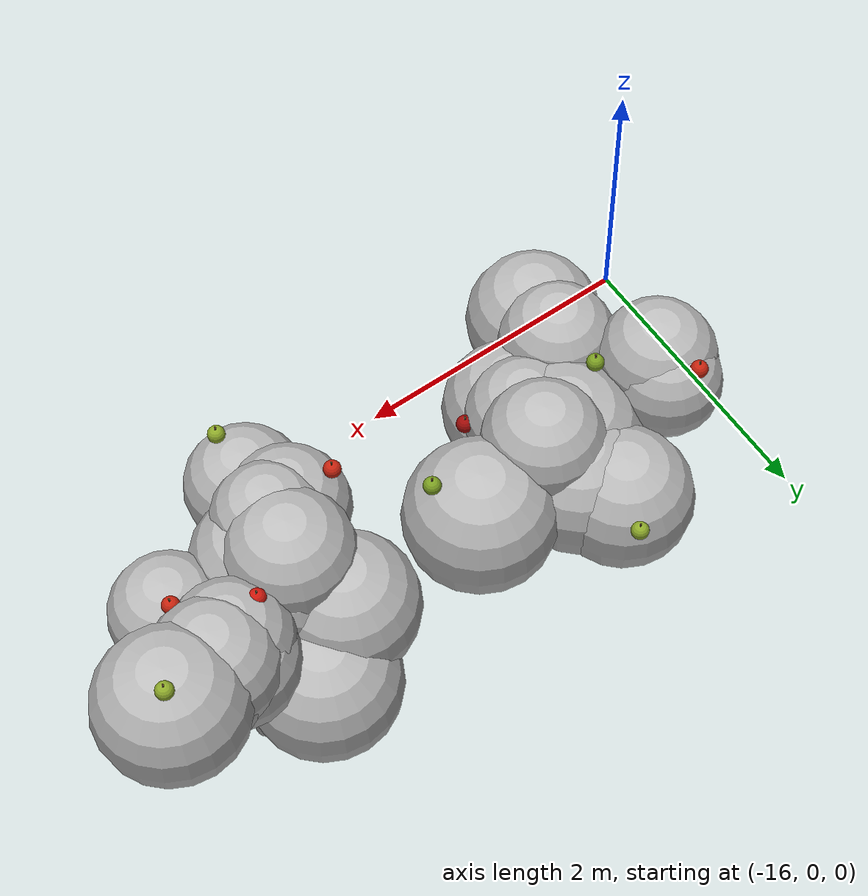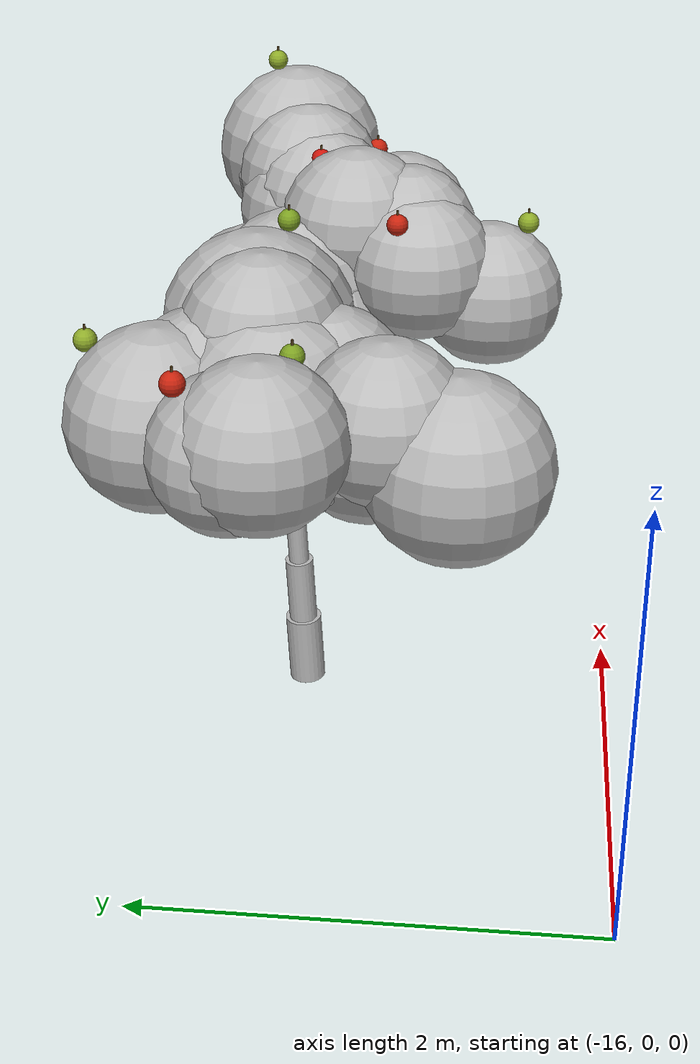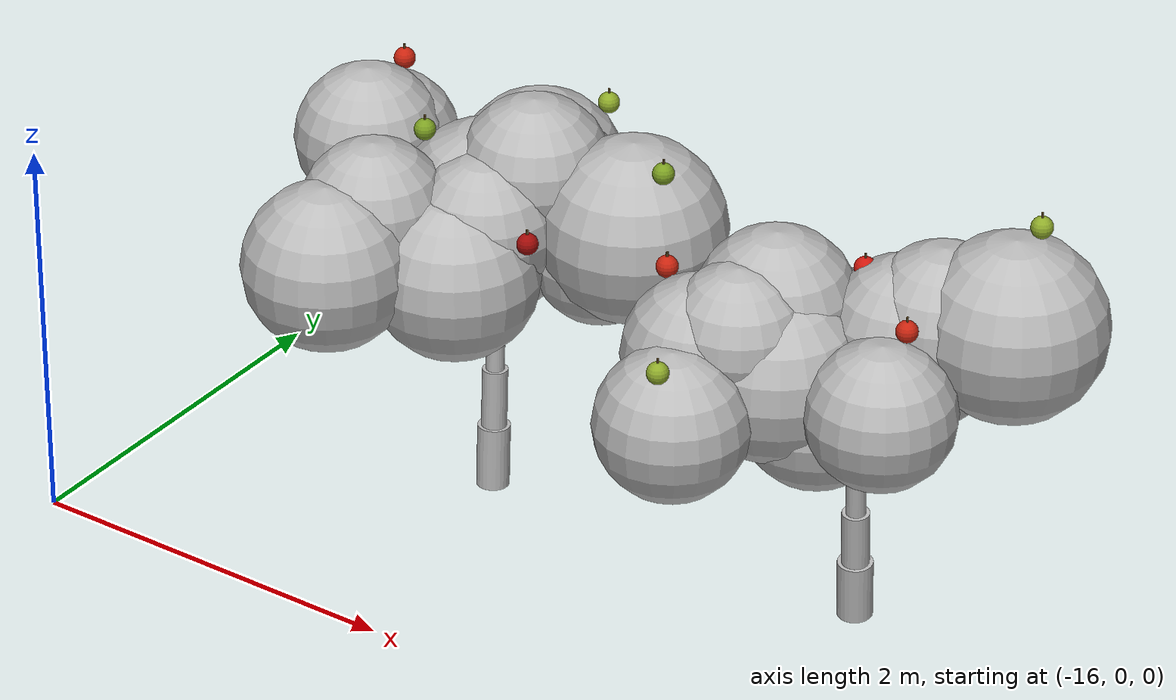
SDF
<sdf version="1.6">
 <world name="default">
  <model name="tree_r3_t1">
   <static>true</static>
   <link name="tree_r3_t1_trunk0">
    <pose>-14.3182 1.4362 0.1592 -0.0537 -0.0063 0</pose>
    <collision name="tree_r3_t1_trunk0_c">
     <geometry><cylinder><radius>0.0838</radius><length>0.3375</length></cylinder></geometry>
    </collision>
    <visual name="tree_r3_t1_trunk0_v">
     <geometry><cylinder><radius>0.0838</radius><length>0.3375</length></cylinder></geometry>
     <material>
      <script>
       <uri>model://orchard/materials/scripts</uri>
       <uri>model://orchard/materials/textures</uri>
       <name>Orchard/Bark</name>
      </script>
     </material>
    </visual>
   </link>
   <link name="tree_r3_t1_trunk1">
    <pose>-14.3202 1.4533 0.4776 -0.0537 -0.0063 0</pose>
    <visual name="tree_r3_t1_trunk1_v">
     <geometry><cylinder><radius>0.0653</radius><length>0.3375</length></cylinder></geometry>
     <material>
      <script>
       <uri>model://orchard/materials/scripts</uri>
       <uri>model://orchard/materials/textures</uri>
       <name>Orchard/Bark</name>
      </script>
     </material>
    </visual>
   </link>
   <link name="tree_r3_t1_trunk2">
    <pose>-14.3222 1.4705 0.7961 -0.0537 -0.0063 0</pose>
    <visual name="tree_r3_t1_trunk2_v">
     <geometry><cylinder><radius>0.0469</radius><length>0.3375</length></cylinder></geometry>
     <material>
      <script>
       <uri>model://orchard/materials/scripts</uri>
       <uri>model://orchard/materials/textures</uri>
       <name>Orchard/Bark</name>
      </script>
     </material>
    </visual>
   </link>
   <link name="tree_r3_t1_br0">
    <pose>-14.0848 1.4720 1.1787 0.0000 0.8179 -0.0293</pose>
    <visual name="tree_r3_t1_br0_v">
     <geometry><cylinder><radius>0.0301</radius><length>0.6536</length></cylinder></geometry>
     <material>
      <script>
       <uri>model://orchard/materials/scripts</uri>
       <uri>model://orchard/materials/textures</uri>
       <name>Orchard/Bark</name>
      </script>
     </material>
    </visual>
   </link>
   <link name="tree_r3_t1_br1">
    <pose>-14.0418 1.7159 1.1548 0.0000 1.0739 0.6997</pose>
    <visual name="tree_r3_t1_br1_v">
     <geometry><cylinder><radius>0.0251</radius><length>0.8369</length></cylinder></geometry>
     <material>
      <script>
       <uri>model://orchard/materials/scripts</uri>
       <uri>model://orchard/materials/textures</uri>
       <name>Orchard/Bark</name>
      </script>
     </material>
    </visual>
   </link>
   <link name="tree_r3_t1_br2">
    <pose>-14.4053 1.6651 1.2347 0.0000 0.6293 1.9862</pose>
    <visual name="tree_r3_t1_br2_v">
     <geometry><cylinder><radius>0.0326</radius><length>0.6912</length></cylinder></geometry>
     <material>
      <script>
       <uri>model://orchard/materials/scripts</uri>
       <uri>model://orchard/materials/textures</uri>
       <name>Orchard/Bark</name>
      </script>
     </material>
    </visual>
   </link>
   <link name="tree_r3_t1_br3">
    <pose>-14.6469 1.5572 1.1988 0.0000 0.9393 2.9046</pose>
    <visual name="tree_r3_t1_br3_v">
     <geometry><cylinder><radius>0.0303</radius><length>0.8252</length></cylinder></geometry>
     <material>
      <script>
       <uri>model://orchard/materials/scripts</uri>
       <uri>model://orchard/materials/textures</uri>
       <name>Orchard/Bark</name>
      </script>
     </material>
    </visual>
   </link>
   <link name="tree_r3_t1_br4">
    <pose>-14.4832 1.1707 1.1184 0.0000 1.1318 4.2339</pose>
    <visual name="tree_r3_t1_br4_v">
     <geometry><cylinder><radius>0.0309</radius><length>0.7675</length></cylinder></geometry>
     <material>
      <script>
       <uri>model://orchard/materials/scripts</uri>
       <uri>model://orchard/materials/textures</uri>
       <name>Orchard/Bark</name>
      </script>
     </material>
    </visual>
   </link>
   <link name="tree_r3_t1_br5">
    <pose>-14.2226 1.1364 1.1197 0.0000 1.1392 4.9981</pose>
    <visual name="tree_r3_t1_br5_v">
     <geometry><cylinder><radius>0.0341</radius><length>0.7862</length></cylinder></geometry>
     <material>
      <script>
       <uri>model://orchard/materials/scripts</uri>
       <uri>model://orchard/materials/textures</uri>
       <name>Orchard/Bark</name>
      </script>
     </material>
    </visual>
   </link>
   <link name="tree_r3_t1_fol0">
    <pose>-14.4100 1.5493 1.4643 0 0 0</pose>
    <visual name="tree_r3_t1_fol0_v">
     <geometry><sphere><radius>0.4921</radius></sphere></geometry>
     <material>
      <script>
       <uri>model://orchard/materials/scripts</uri>
       <uri>model://orchard/materials/textures</uri>
       <name>Orchard/Foliage1</name>
      </script>
     </material>
    </visual>
   </link>
   <link name="tree_r3_t1_fol1">
    <pose>-15.0916 1.6495 1.6360 0 0 0</pose>
    <visual name="tree_r3_t1_fol1_v">
     <geometry><sphere><radius>0.3508</radius></sphere></geometry>
     <material>
      <script>
       <uri>model://orchard/materials/scripts</uri>
       <uri>model://orchard/materials/textures</uri>
       <name>Orchard/Foliage1</name>
      </script>
     </material>
    </visual>
   </link>
   <link name="tree_r3_t1_fol2">
    <pose>-14.7310 1.0336 1.6213 0 0 0</pose>
    <visual name="tree_r3_t1_fol2_v">
     <geometry><sphere><radius>0.3716</radius></sphere></geometry>
     <material>
      <script>
       <uri>model://orchard/materials/scripts</uri>
       <uri>model://orchard/materials/textures</uri>
       <name>Orchard/Foliage3</name>
      </script>
     </material>
    </visual>
   </link>
   <link name="tree_r3_t1_fol3">
    <pose>-14.1890 1.6277 1.7572 0 0 0</pose>
    <visual name="tree_r3_t1_fol3_v">
     <geometry><sphere><radius>0.3823</radius></sphere></geometry>
     <material>
      <script>
       <uri>model://orchard/materials/scripts</uri>
       <uri>model://orchard/materials/textures</uri>
       <name>Orchard/Foliage0</name>
      </script>
     </material>
    </visual>
   </link>
   <link name="tree_r3_t1_fol4">
    <pose>-14.2759 1.3231 1.5490 0 0 0</pose>
    <visual name="tree_r3_t1_fol4_v">
     <geometry><sphere><radius>0.3739</radius></sphere></geometry>
     <material>
      <script>
       <uri>model://orchard/materials/scripts</uri>
       <uri>model://orchard/materials/textures</uri>
       <name>Orchard/Foliage3</name>
      </script>
     </material>
    </visual>
   </link>
   <link name="tree_r3_t1_fol5">
    <pose>-14.3159 1.1281 1.3517 0 0 0</pose>
    <visual name="tree_r3_t1_fol5_v">
     <geometry><sphere><radius>0.4291</radius></sphere></geometry>
     <material>
      <script>
       <uri>model://orchard/materials/scripts</uri>
       <uri>model://orchard/materials/textures</uri>
       <name>Orchard/Foliage3</name>
      </script>
     </material>
    </visual>
   </link>
   <link name="tree_r3_t1_fol6">
    <pose>-14.4638 2.0633 1.4496 0 0 0</pose>
    <visual name="tree_r3_t1_fol6_v">
     <geometry><sphere><radius>0.4357</radius></sphere></geometry>
     <material>
      <script>
       <uri>model://orchard/materials/scripts</uri>
       <uri>model://orchard/materials/textures</uri>
       <name>Orchard/Foliage2</name>
      </script>
     </material>
    </visual>
   </link>
   <link name="tree_r3_t1_fol7">
    <pose>-15.1217 1.5192 1.6933 0 0 0</pose>
    <visual name="tree_r3_t1_fol7_v">
     <geometry><sphere><radius>0.3779</radius></sphere></geometry>
     <material>
      <script>
       <uri>model://orchard/materials/scripts</uri>
       <uri>model://orchard/materials/textures</uri>
       <name>Orchard/Foliage0</name>
      </script>
     </material>
    </visual>
   </link>
   <link name="tree_r3_t1_fol8">
    <pose>-14.3031 1.8440 1.4712 0 0 0</pose>
    <visual name="tree_r3_t1_fol8_v">
     <geometry><sphere><radius>0.4401</radius></sphere></geometry>
     <material>
      <script>
       <uri>model://orchard/materials/scripts</uri>
       <uri>model://orchard/materials/textures</uri>
       <name>Orchard/Foliage0</name>
      </script>
     </material>
    </visual>
   </link>
   <link name="tree_r3_t1_fol9">
    <pose>-13.6654 1.7209 1.5473 0 0 0</pose>
    <visual name="tree_r3_t1_fol9_v">
     <geometry><sphere><radius>0.4728</radius></sphere></geometry>
     <material>
      <script>
       <uri>model://orchard/materials/scripts</uri>
       <uri>model://orchard/materials/textures</uri>
       <name>Orchard/Foliage2</name>
      </script>
     </material>
    </visual>
   </link>
   <link name="tree_r3_t1_fol10">
    <pose>-13.8408 1.6982 1.3578 0 0 0</pose>
    <visual name="tree_r3_t1_fol10_v">
     <geometry><sphere><radius>0.3553</radius></sphere></geometry>
     <material>
      <script>
       <uri>model://orchard/materials/scripts</uri>
       <uri>model://orchard/materials/textures</uri>
       <name>Orchard/Foliage0</name>
      </script>
     </material>
    </visual>
   </link>
   <link name="tree_r3_t1_fol11">
    <pose>-14.7848 0.7210 1.4432 0 0 0</pose>
    <visual name="tree_r3_t1_fol11_v">
     <geometry><sphere><radius>0.4283</radius></sphere></geometry>
     <material>
      <script>
       <uri>model://orchard/materials/scripts</uri>
       <uri>model://orchard/materials/textures</uri>
       <name>Orchard/Foliage1</name>
      </script>
     </material>
    </visual>
   </link>
   <link name="tree_r3_t1_ap0">
    <pose>-15.1509 1.8583 1.9723 0 0 0</pose>
    <visual name="tree_r3_t1_ap0_v">
     <geometry><sphere><radius>0.0550</radius></sphere></geometry>
     <material>
      <ambient>0.312 0.056 0.024 1.00</ambient>
      <diffuse>0.780 0.140 0.060 1.00</diffuse>
      <specular>0.45 0.35 0.32 1</specular>
     </material>
    </visual>
   </link>
   <link name="tree_r3_t1_st0">
    <pose>-15.1509 1.8583 2.0245 0 0 0</pose>
    <visual name="tree_r3_t1_st0_v">
     <geometry><cylinder><radius>0.0060</radius><length>0.0500</length></cylinder></geometry>
     <material><ambient>0.128 0.096 0.040 1.00</ambient><diffuse>0.320 0.240 0.100 1.00</diffuse></material>
    </visual>
   </link>
   <link name="tree_r3_t1_ap1">
    <pose>-14.7102 1.4303 1.8990 0 0 0</pose>
    <visual name="tree_r3_t1_ap1_v">
     <geometry><sphere><radius>0.0550</radius></sphere></geometry>
     <material>
      <ambient>0.192 0.248 0.052 1.00</ambient>
      <diffuse>0.480 0.620 0.130 1.00</diffuse>
      <specular>0.45 0.35 0.32 1</specular>
     </material>
    </visual>
   </link>
   <link name="tree_r3_t1_st1">
    <pose>-14.7102 1.4303 1.9513 0 0 0</pose>
    <visual name="tree_r3_t1_st1_v">
     <geometry><cylinder><radius>0.0060</radius><length>0.0500</length></cylinder></geometry>
     <material><ambient>0.128 0.096 0.040 1.00</ambient><diffuse>0.320 0.240 0.100 1.00</diffuse></material>
    </visual>
   </link>
   <link name="tree_r3_t1_ap2">
    <pose>-13.9261 1.1944 1.6215 0 0 0</pose>
    <visual name="tree_r3_t1_ap2_v">
     <geometry><sphere><radius>0.0550</radius></sphere></geometry>
     <material>
      <ambient>0.248 0.016 0.012 1.00</ambient>
      <diffuse>0.620 0.040 0.030 1.00</diffuse>
      <specular>0.45 0.35 0.32 1</specular>
     </material>
    </visual>
   </link>
   <link name="tree_r3_t1_st2">
    <pose>-13.9261 1.1944 1.6737 0 0 0</pose>
    <visual name="tree_r3_t1_st2_v">
     <geometry><cylinder><radius>0.0060</radius><length>0.0500</length></cylinder></geometry>
     <material><ambient>0.128 0.096 0.040 1.00</ambient><diffuse>0.320 0.240 0.100 1.00</diffuse></material>
    </visual>
   </link>
   <link name="tree_r3_t1_ap3">
    <pose>-14.2987 2.4198 1.7343 0 0 0</pose>
    <visual name="tree_r3_t1_ap3_v">
     <geometry><sphere><radius>0.0550</radius></sphere></geometry>
     <material>
      <ambient>0.220 0.264 0.064 1.00</ambient>
      <diffuse>0.550 0.660 0.160 1.00</diffuse>
      <specular>0.45 0.35 0.32 1</specular>
     </material>
    </visual>
   </link>
   <link name="tree_r3_t1_st3">
    <pose>-14.2987 2.4198 1.7865 0 0 0</pose>
    <visual name="tree_r3_t1_st3_v">
     <geometry><cylinder><radius>0.0060</radius><length>0.0500</length></cylinder></geometry>
     <material><ambient>0.128 0.096 0.040 1.00</ambient><diffuse>0.320 0.240 0.100 1.00</diffuse></material>
    </visual>
   </link>
   <link name="tree_r3_t1_ap4">
    <pose>-13.4119 1.6029 1.9885 0 0 0</pose>
    <visual name="tree_r3_t1_ap4_v">
     <geometry><sphere><radius>0.0550</radius></sphere></geometry>
     <material>
      <ambient>0.192 0.248 0.052 1.00</ambient>
      <diffuse>0.480 0.620 0.130 1.00</diffuse>
      <specular>0.45 0.35 0.32 1</specular>
     </material>
    </visual>
   </link>
   <link name="tree_r3_t1_st4">
    <pose>-13.4119 1.6029 2.0408 0 0 0</pose>
    <visual name="tree_r3_t1_st4_v">
     <geometry><cylinder><radius>0.0060</radius><length>0.0500</length></cylinder></geometry>
     <material><ambient>0.128 0.096 0.040 1.00</ambient><diffuse>0.320 0.240 0.100 1.00</diffuse></material>
    </visual>
   </link>
  </model>
  <model name="tree_r3_t2">
   <static>true</static>
   <link name="tree_r3_t2_trunk0">
    <pose>-12.1853 1.4785 0.1457 0.0573 0.0193 0</pose>
    <collision name="tree_r3_t2_trunk0_c">
     <geometry><cylinder><radius>0.0883</radius><length>0.3089</length></cylinder></geometry>
    </collision>
    <visual name="tree_r3_t2_trunk0_v">
     <geometry><cylinder><radius>0.0883</radius><length>0.3089</length></cylinder></geometry>
     <material>
      <script>
       <uri>model://orchard/materials/scripts</uri>
       <uri>model://orchard/materials/textures</uri>
       <name>Orchard/Bark</name>
      </script>
     </material>
    </visual>
   </link>
   <link name="tree_r3_t2_trunk1">
    <pose>-12.1797 1.4618 0.4371 0.0573 0.0193 0</pose>
    <visual name="tree_r3_t2_trunk1_v">
     <geometry><cylinder><radius>0.0689</radius><length>0.3089</length></cylinder></geometry>
     <material>
      <script>
       <uri>model://orchard/materials/scripts</uri>
       <uri>model://orchard/materials/textures</uri>
       <name>Orchard/Bark</name>
      </script>
     </material>
    </visual>
   </link>
   <link name="tree_r3_t2_trunk2">
    <pose>-12.1740 1.4451 0.7285 0.0573 0.0193 0</pose>
    <visual name="tree_r3_t2_trunk2_v">
     <geometry><cylinder><radius>0.0495</radius><length>0.3089</length></cylinder></geometry>
     <material>
      <script>
       <uri>model://orchard/materials/scripts</uri>
       <uri>model://orchard/materials/textures</uri>
       <name>Orchard/Bark</name>
      </script>
     </material>
    </visual>
   </link>
   <link name="tree_r3_t2_br0">
    <pose>-11.9132 1.3646 1.1151 0.0000 0.8384 -0.2730</pose>
    <visual name="tree_r3_t2_br0_v">
     <geometry><cylinder><radius>0.0357</radius><length>0.7206</length></cylinder></geometry>
     <material>
      <script>
       <uri>model://orchard/materials/scripts</uri>
       <uri>model://orchard/materials/textures</uri>
       <name>Orchard/Bark</name>
      </script>
     </material>
    </visual>
   </link>
   <link name="tree_r3_t2_br1">
    <pose>-11.9758 1.6086 1.1696 0.0000 0.7221 0.7211</pose>
    <visual name="tree_r3_t2_br1_v">
     <geometry><cylinder><radius>0.0295</radius><length>0.7873</length></cylinder></geometry>
     <material>
      <script>
       <uri>model://orchard/materials/scripts</uri>
       <uri>model://orchard/materials/textures</uri>
       <name>Orchard/Bark</name>
      </script>
     </material>
    </visual>
   </link>
   <link name="tree_r3_t2_br2">
    <pose>-12.3436 1.6546 1.0006 0.0000 1.1436 2.2403</pose>
    <visual name="tree_r3_t2_br2_v">
     <geometry><cylinder><radius>0.0320</radius><length>0.6103</length></cylinder></geometry>
     <material>
      <script>
       <uri>model://orchard/materials/scripts</uri>
       <uri>model://orchard/materials/textures</uri>
       <name>Orchard/Bark</name>
      </script>
     </material>
    </visual>
   </link>
   <link name="tree_r3_t2_br3">
    <pose>-12.5097 1.4795 1.0293 0.0000 1.1440 3.0162</pose>
    <visual name="tree_r3_t2_br3_v">
     <geometry><cylinder><radius>0.0240</radius><length>0.7494</length></cylinder></geometry>
     <material>
      <script>
       <uri>model://orchard/materials/scripts</uri>
       <uri>model://orchard/materials/textures</uri>
       <name>Orchard/Bark</name>
      </script>
     </material>
    </visual>
   </link>
   <link name="tree_r3_t2_br4">
    <pose>-12.3764 1.1550 1.0982 0.0000 0.9995 4.0831</pose>
    <visual name="tree_r3_t2_br4_v">
     <geometry><cylinder><radius>0.0358</radius><length>0.8287</length></cylinder></geometry>
     <material>
      <script>
       <uri>model://orchard/materials/scripts</uri>
       <uri>model://orchard/materials/textures</uri>
       <name>Orchard/Bark</name>
      </script>
     </material>
    </visual>
   </link>
   <link name="tree_r3_t2_br5">
    <pose>-12.0830 1.2855 1.0947 0.0000 0.6711 5.2407</pose>
    <visual name="tree_r3_t2_br5_v">
     <geometry><cylinder><radius>0.0313</radius><length>0.5632</length></cylinder></geometry>
     <material>
      <script>
       <uri>model://orchard/materials/scripts</uri>
       <uri>model://orchard/materials/textures</uri>
       <name>Orchard/Bark</name>
      </script>
     </material>
    </visual>
   </link>
   <link name="tree_r3_t2_fol0">
    <pose>-11.5377 1.7711 1.6953 0 0 0</pose>
    <visual name="tree_r3_t2_fol0_v">
     <geometry><sphere><radius>0.4645</radius></sphere></geometry>
     <material>
      <script>
       <uri>model://orchard/materials/scripts</uri>
       <uri>model://orchard/materials/textures</uri>
       <name>Orchard/Foliage2</name>
      </script>
     </material>
    </visual>
   </link>
   <link name="tree_r3_t2_fol1">
    <pose>-12.6960 0.6346 1.3290 0 0 0</pose>
    <visual name="tree_r3_t2_fol1_v">
     <geometry><sphere><radius>0.3820</radius></sphere></geometry>
     <material>
      <script>
       <uri>model://orchard/materials/scripts</uri>
       <uri>model://orchard/materials/textures</uri>
       <name>Orchard/Foliage3</name>
      </script>
     </material>
    </visual>
   </link>
   <link name="tree_r3_t2_fol2">
    <pose>-12.5047 1.4427 1.4864 0 0 0</pose>
    <visual name="tree_r3_t2_fol2_v">
     <geometry><sphere><radius>0.3420</radius></sphere></geometry>
     <material>
      <script>
       <uri>model://orchard/materials/scripts</uri>
       <uri>model://orchard/materials/textures</uri>
       <name>Orchard/Foliage1</name>
      </script>
     </material>
    </visual>
   </link>
   <link name="tree_r3_t2_fol3">
    <pose>-11.8651 1.6775 1.6557 0 0 0</pose>
    <visual name="tree_r3_t2_fol3_v">
     <geometry><sphere><radius>0.3972</radius></sphere></geometry>
     <material>
      <script>
       <uri>model://orchard/materials/scripts</uri>
       <uri>model://orchard/materials/textures</uri>
       <name>Orchard/Foliage3</name>
      </script>
     </material>
    </visual>
   </link>
   <link name="tree_r3_t2_fol4">
    <pose>-12.4810 1.1891 1.4219 0 0 0</pose>
    <visual name="tree_r3_t2_fol4_v">
     <geometry><sphere><radius>0.4512</radius></sphere></geometry>
     <material>
      <script>
       <uri>model://orchard/materials/scripts</uri>
       <uri>model://orchard/materials/textures</uri>
       <name>Orchard/Foliage0</name>
      </script>
     </material>
    </visual>
   </link>
   <link name="tree_r3_t2_fol5">
    <pose>-11.7476 1.7528 1.6196 0 0 0</pose>
    <visual name="tree_r3_t2_fol5_v">
     <geometry><sphere><radius>0.3532</radius></sphere></geometry>
     <material>
      <script>
       <uri>model://orchard/materials/scripts</uri>
       <uri>model://orchard/materials/textures</uri>
       <name>Orchard/Foliage3</name>
      </script>
     </material>
    </visual>
   </link>
   <link name="tree_r3_t2_fol6">
    <pose>-12.5846 1.3442 1.6570 0 0 0</pose>
    <visual name="tree_r3_t2_fol6_v">
     <geometry><sphere><radius>0.4031</radius></sphere></geometry>
     <material>
      <script>
       <uri>model://orchard/materials/scripts</uri>
       <uri>model://orchard/materials/textures</uri>
       <name>Orchard/Foliage1</name>
      </script>
     </material>
    </visual>
   </link>
   <link name="tree_r3_t2_fol7">
    <pose>-12.4280 1.8916 1.0698 0 0 0</pose>
    <visual name="tree_r3_t2_fol7_v">
     <geometry><sphere><radius>0.4733</radius></sphere></geometry>
     <material>
      <script>
       <uri>model://orchard/materials/scripts</uri>
       <uri>model://orchard/materials/textures</uri>
       <name>Orchard/Foliage2</name>
      </script>
     </material>
    </visual>
   </link>
   <link name="tree_r3_t2_fol8">
    <pose>-12.6910 1.5683 1.1907 0 0 0</pose>
    <visual name="tree_r3_t2_fol8_v">
     <geometry><sphere><radius>0.4934</radius></sphere></geometry>
     <material>
      <script>
       <uri>model://orchard/materials/scripts</uri>
       <uri>model://orchard/materials/textures</uri>
       <name>Orchard/Foliage1</name>
      </script>
     </material>
    </visual>
   </link>
   <link name="tree_r3_t2_fol9">
    <pose>-12.0229 1.5915 1.5868 0 0 0</pose>
    <visual name="tree_r3_t2_fol9_v">
     <geometry><sphere><radius>0.3834</radius></sphere></geometry>
     <material>
      <script>
       <uri>model://orchard/materials/scripts</uri>
       <uri>model://orchard/materials/textures</uri>
       <name>Orchard/Foliage0</name>
      </script>
     </material>
    </visual>
   </link>
   <link name="tree_r3_t2_fol10">
    <pose>-12.7802 1.0000 1.5057 0 0 0</pose>
    <visual name="tree_r3_t2_fol10_v">
     <geometry><sphere><radius>0.3876</radius></sphere></geometry>
     <material>
      <script>
       <uri>model://orchard/materials/scripts</uri>
       <uri>model://orchard/materials/textures</uri>
       <name>Orchard/Foliage0</name>
      </script>
     </material>
    </visual>
   </link>
   <link name="tree_r3_t2_fol11">
    <pose>-11.8662 1.1452 1.4115 0 0 0</pose>
    <visual name="tree_r3_t2_fol11_v">
     <geometry><sphere><radius>0.3694</radius></sphere></geometry>
     <material>
      <script>
       <uri>model://orchard/materials/scripts</uri>
       <uri>model://orchard/materials/textures</uri>
       <name>Orchard/Foliage1</name>
      </script>
     </material>
    </visual>
   </link>
   <link name="tree_r3_t2_fol12">
    <pose>-12.7504 1.6526 1.3177 0 0 0</pose>
    <visual name="tree_r3_t2_fol12_v">
     <geometry><sphere><radius>0.4539</radius></sphere></geometry>
     <material>
      <script>
       <uri>model://orchard/materials/scripts</uri>
       <uri>model://orchard/materials/textures</uri>
       <name>Orchard/Foliage0</name>
      </script>
     </material>
    </visual>
   </link>
   <link name="tree_r3_t2_fol13">
    <pose>-12.6164 1.0681 1.6274 0 0 0</pose>
    <visual name="tree_r3_t2_fol13_v">
     <geometry><sphere><radius>0.3564</radius></sphere></geometry>
     <material>
      <script>
       <uri>model://orchard/materials/scripts</uri>
       <uri>model://orchard/materials/textures</uri>
       <name>Orchard/Foliage2</name>
      </script>
     </material>
    </visual>
   </link>
   <link name="tree_r3_t2_fol14">
    <pose>-12.3074 1.2813 1.1987 0 0 0</pose>
    <visual name="tree_r3_t2_fol14_v">
     <geometry><sphere><radius>0.3754</radius></sphere></geometry>
     <material>
      <script>
       <uri>model://orchard/materials/scripts</uri>
       <uri>model://orchard/materials/textures</uri>
       <name>Orchard/Foliage2</name>
      </script>
     </material>
    </visual>
   </link>
   <link name="tree_r3_t2_fol15">
    <pose>-11.9818 1.6493 1.4969 0 0 0</pose>
    <visual name="tree_r3_t2_fol15_v">
     <geometry><sphere><radius>0.4105</radius></sphere></geometry>
     <material>
      <script>
       <uri>model://orchard/materials/scripts</uri>
       <uri>model://orchard/materials/textures</uri>
       <name>Orchard/Foliage0</name>
      </script>
     </material>
    </visual>
   </link>
   <link name="tree_r3_t2_ap0">
    <pose>-11.8311 1.2981 1.8000 0 0 0</pose>
    <visual name="tree_r3_t2_ap0_v">
     <geometry><sphere><radius>0.0550</radius></sphere></geometry>
     <material>
      <ambient>0.312 0.056 0.024 1.00</ambient>
      <diffuse>0.780 0.140 0.060 1.00</diffuse>
      <specular>0.45 0.35 0.32 1</specular>
     </material>
    </visual>
   </link>
   <link name="tree_r3_t2_st0">
    <pose>-11.8311 1.2981 1.8522 0 0 0</pose>
    <visual name="tree_r3_t2_st0_v">
     <geometry><cylinder><radius>0.0060</radius><length>0.0500</length></cylinder></geometry>
     <material><ambient>0.128 0.096 0.040 1.00</ambient><diffuse>0.320 0.240 0.100 1.00</diffuse></material>
    </visual>
   </link>
   <link name="tree_r3_t2_ap1">
    <pose>-11.4827 1.9011 2.1895 0 0 0</pose>
    <visual name="tree_r3_t2_ap1_v">
     <geometry><sphere><radius>0.0550</radius></sphere></geometry>
     <material>
      <ambient>0.220 0.264 0.064 1.00</ambient>
      <diffuse>0.550 0.660 0.160 1.00</diffuse>
      <specular>0.45 0.35 0.32 1</specular>
     </material>
    </visual>
   </link>
   <link name="tree_r3_t2_st1">
    <pose>-11.4827 1.9011 2.2418 0 0 0</pose>
    <visual name="tree_r3_t2_st1_v">
     <geometry><cylinder><radius>0.0060</radius><length>0.0500</length></cylinder></geometry>
     <material><ambient>0.128 0.096 0.040 1.00</ambient><diffuse>0.320 0.240 0.100 1.00</diffuse></material>
    </visual>
   </link>
   <link name="tree_r3_t2_ap2">
    <pose>-12.6498 0.4451 1.7140 0 0 0</pose>
    <visual name="tree_r3_t2_ap2_v">
     <geometry><sphere><radius>0.0550</radius></sphere></geometry>
     <material>
      <ambient>0.220 0.264 0.064 1.00</ambient>
      <diffuse>0.550 0.660 0.160 1.00</diffuse>
      <specular>0.45 0.35 0.32 1</specular>
     </material>
    </visual>
   </link>
   <link name="tree_r3_t2_st2">
    <pose>-12.6498 0.4451 1.7662 0 0 0</pose>
    <visual name="tree_r3_t2_st2_v">
     <geometry><cylinder><radius>0.0060</radius><length>0.0500</length></cylinder></geometry>
     <material><ambient>0.128 0.096 0.040 1.00</ambient><diffuse>0.320 0.240 0.100 1.00</diffuse></material>
    </visual>
   </link>
   <link name="tree_r3_t2_ap3">
    <pose>-13.0476 1.1034 1.8356 0 0 0</pose>
    <visual name="tree_r3_t2_ap3_v">
     <geometry><sphere><radius>0.0550</radius></sphere></geometry>
     <material>
      <ambient>0.312 0.056 0.024 1.00</ambient>
      <diffuse>0.780 0.140 0.060 1.00</diffuse>
      <specular>0.45 0.35 0.32 1</specular>
     </material>
    </visual>
   </link>
   <link name="tree_r3_t2_st3">
    <pose>-13.0476 1.1034 1.8879 0 0 0</pose>
    <visual name="tree_r3_t2_st3_v">
     <geometry><cylinder><radius>0.0060</radius><length>0.0500</length></cylinder></geometry>
     <material><ambient>0.128 0.096 0.040 1.00</ambient><diffuse>0.320 0.240 0.100 1.00</diffuse></material>
    </visual>
   </link>
   <link name="tree_r3_t2_ap4">
    <pose>-12.2392 1.5724 1.8759 0 0 0</pose>
    <visual name="tree_r3_t2_ap4_v">
     <geometry><sphere><radius>0.0550</radius></sphere></geometry>
     <material>
      <ambient>0.320 0.036 0.020 1.00</ambient>
      <diffuse>0.800 0.090 0.050 1.00</diffuse>
      <specular>0.45 0.35 0.32 1</specular>
     </material>
    </visual>
   </link>
   <link name="tree_r3_t2_st4">
    <pose>-12.2392 1.5724 1.9282 0 0 0</pose>
    <visual name="tree_r3_t2_st4_v">
     <geometry><cylinder><radius>0.0060</radius><length>0.0500</length></cylinder></geometry>
     <material><ambient>0.128 0.096 0.040 1.00</ambient><diffuse>0.320 0.240 0.100 1.00</diffuse></material>
    </visual>
   </link>
  </model>
 </world>
</sdf>
